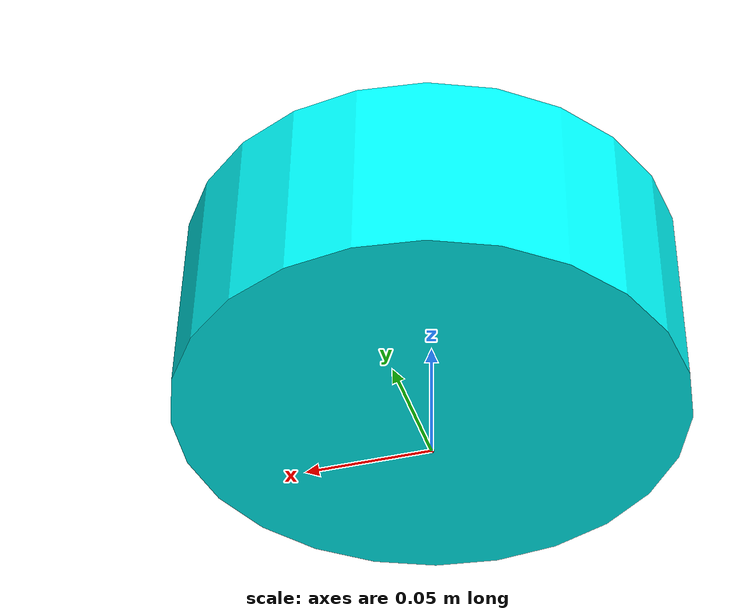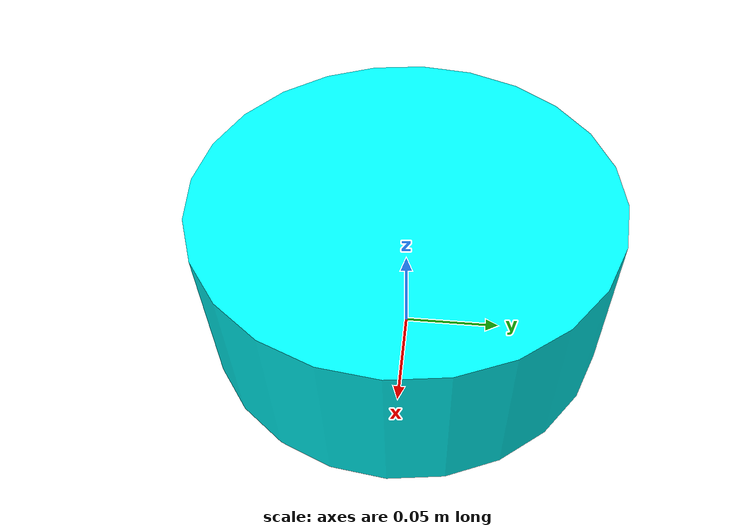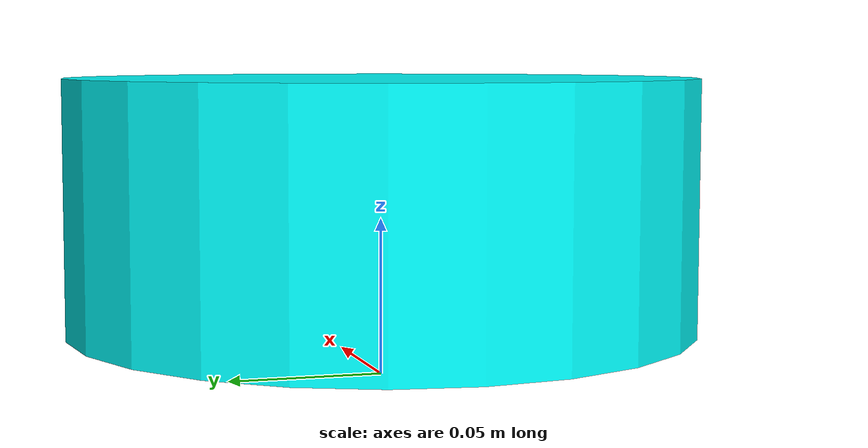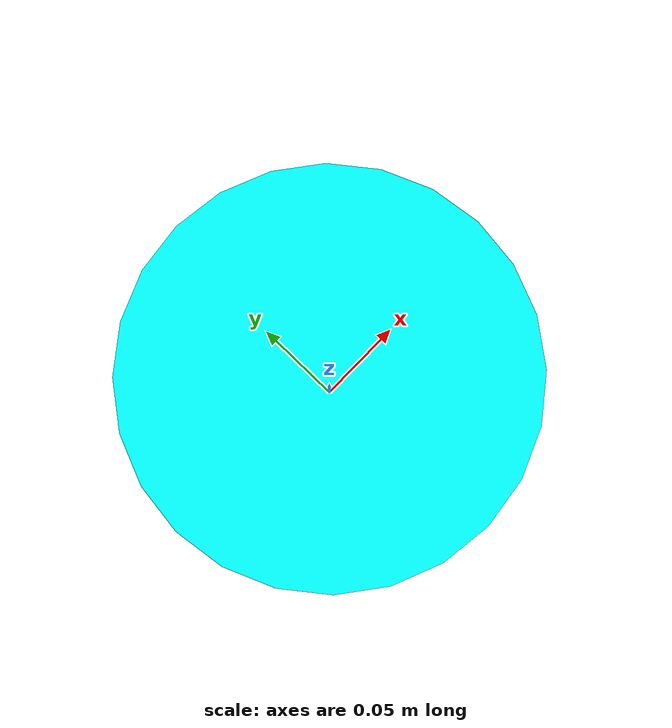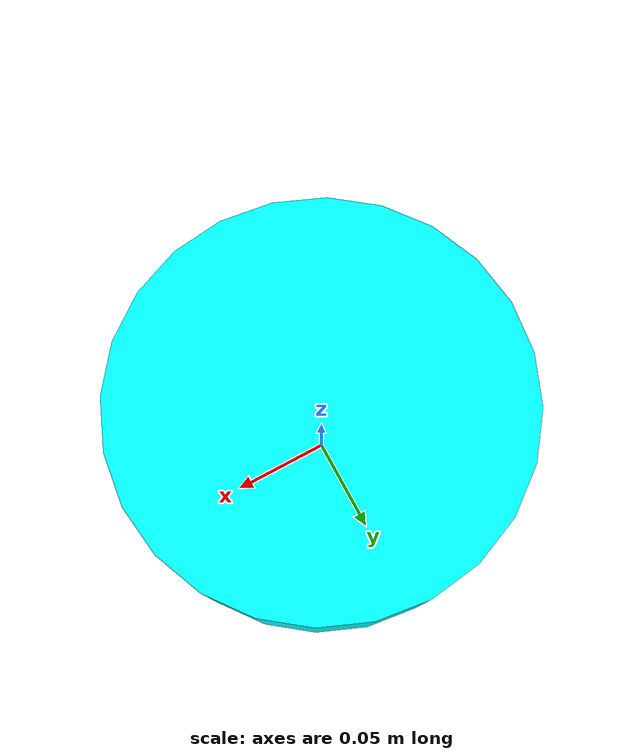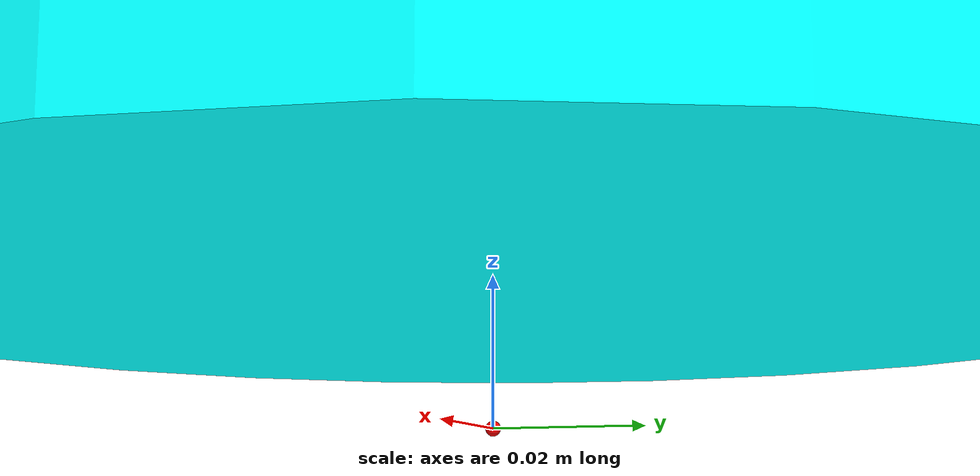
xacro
<robot name="base_plate" xmlns:xacro="http://www.ros.org/wiki/xacro">
    <!-- footprint -->
    <xacro:property name="footprint_radius" value="0.001" />

    <link name="footprint_link">
        <visual name="footprint">
            <geometry>
                <sphere radius="${footprint_radius}"/>
            </geometry>
            <origin xyz="0.0 0.0 0.0" rpy="0.0 0.0 0.0"/>
            <material name="yellow">
                <color rgba="1.0 0.0 0.0 1.0"/>
            </material>
        </visual>
    </link>

    <!-- 底盘 -->
    <xacro:property name="ground_length" value="0.015" />
    <xacro:property name="base_radius" value="0.1" />
    <xacro:property name="base_length" value="0.08" />
    <xacro:property name="base_z" value="${base_length/2 + ground_length}" />
    <xacro:property name="PI" value="3.1415927" />

    <link name="base_link">
        <visual name="base">
            <origin xyz="0.0 0.0 0.0" rpy="0.0 0.0 0.0"/>
            <geometry>
                <cylinder radius="${base_radius}" length="${base_length}" />
            </geometry>
            <material name="yellow">
                <color rgba="0.0 1.0 1.0 1.0"/>
            </material>
        </visual>
    </link>

    <joint name="base_foot" type="fixed">
        <origin xyz="0.0 0.0 ${base_z}" rpy="0.0 0.0 0.0"/>
        <parent link="footprint_link"/>
        <child link="base_link"/>
        <axis xyz="0.0 0.0 0.0"/>
    </joint>

</robot>
